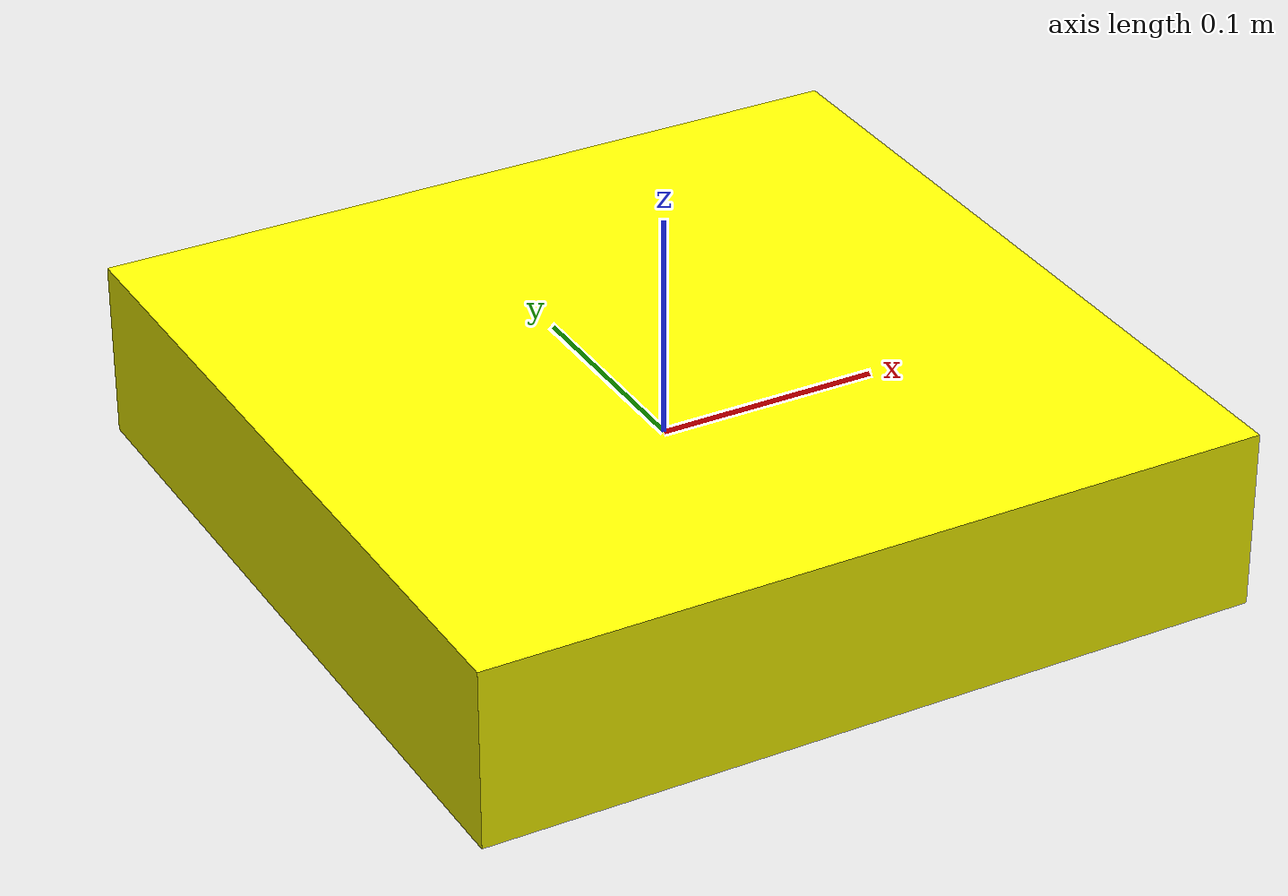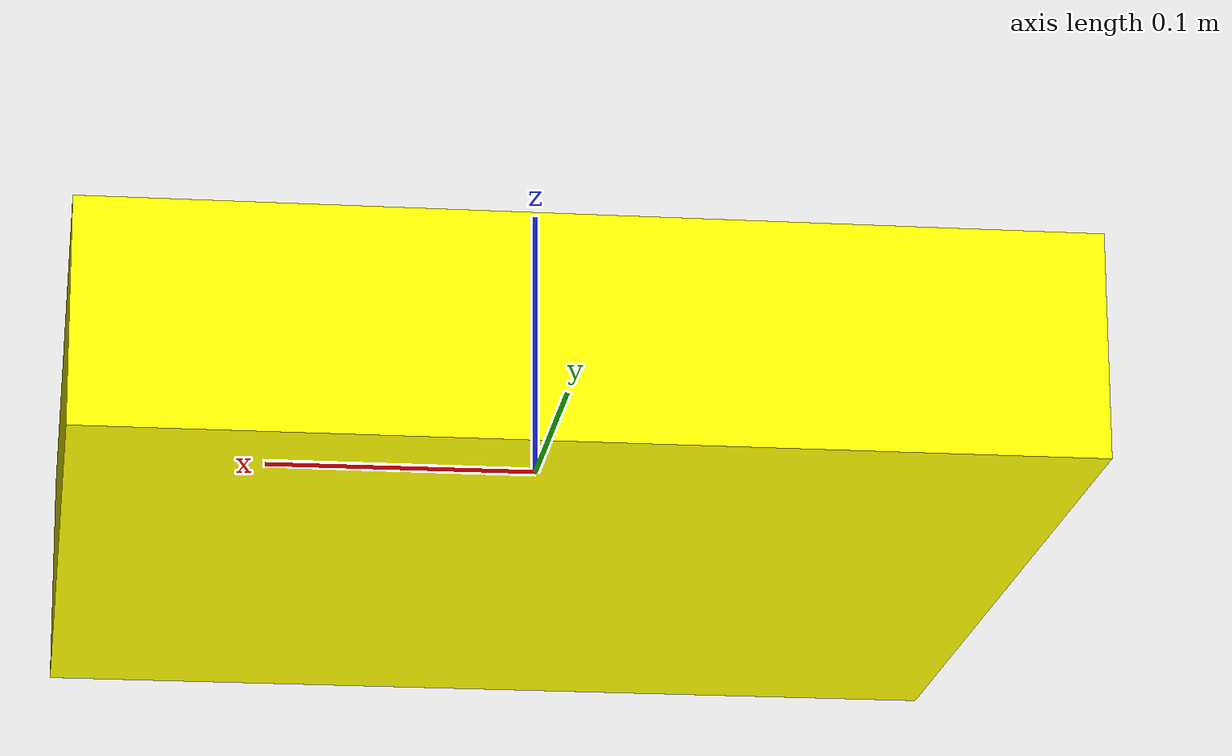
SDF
<?xml version="1.0" encoding="UTF-8"?>
<sdf version="1.8">
  <model name="operator">
    <static>true</static>
    <link name="body">
      <visual name="visual">
        <geometry>
          <box>
            <size>0.35 0.35 0.08</size>
          </box>
        </geometry>
        <material>
          <ambient>1.0 1.0 0.0 1.0</ambient>
          <diffuse>1.0 1.0 0.0 1.0</diffuse>
          <specular>0.1 0.1 0.0 1.0</specular>
          <emissive>0.1 0.1 0.0 1.0</emissive>
        </material>
      </visual>
    </link>
  </model>
</sdf>
